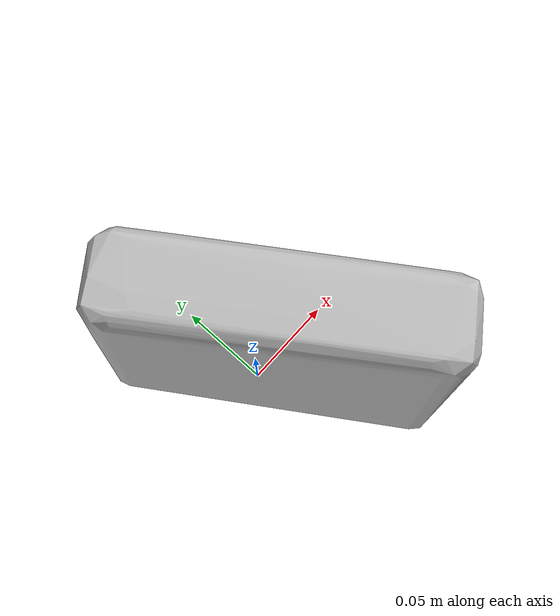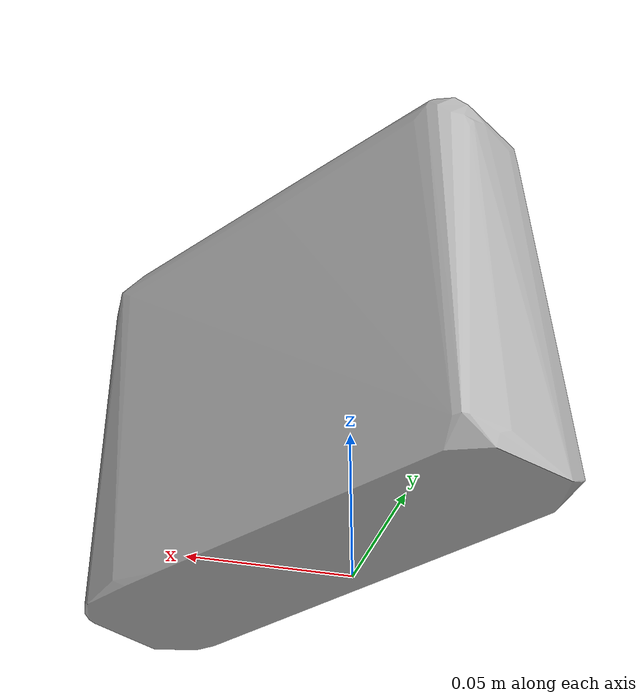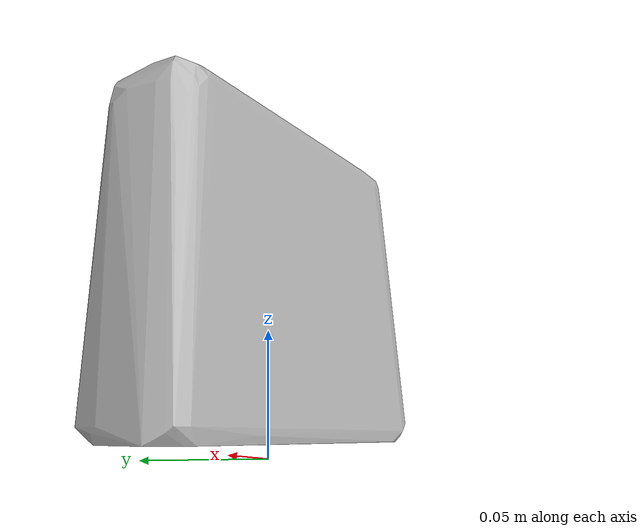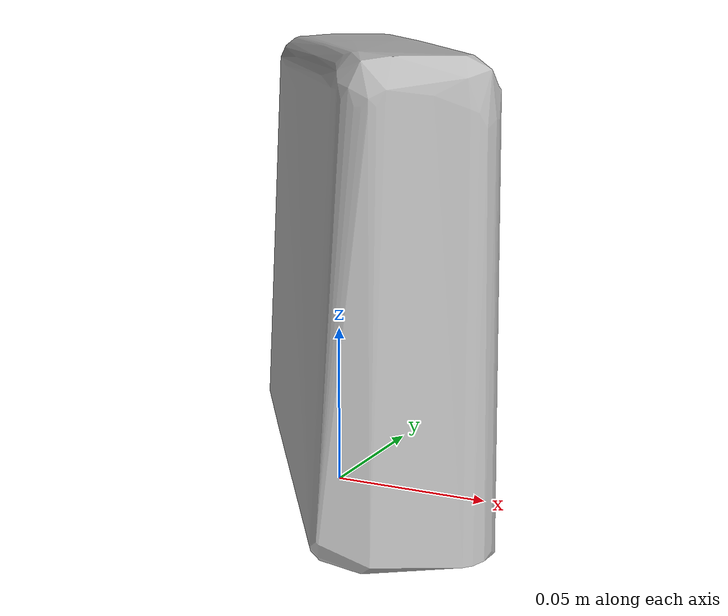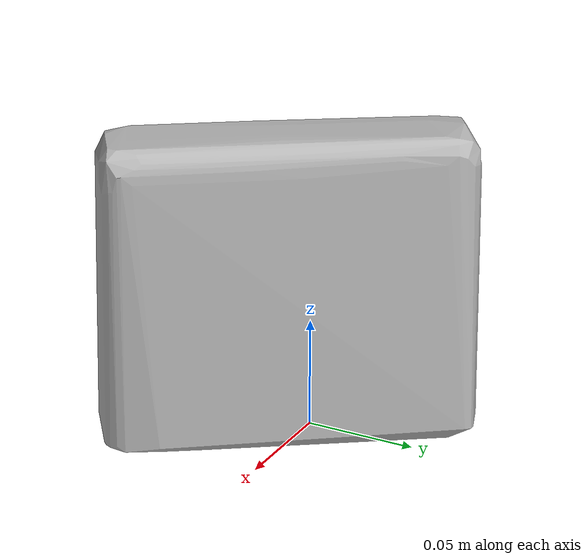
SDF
<?xml version='1.0'?>
<sdf version="1.4">
  <model name="nature_valley_gluten_free_roasted_nut_crunch_almond_crunch">
    <static>false</static>
    <link name="link">
      <inertial>
        <pose>0.013004093621819882 -0.003708693906911327 0.0700644005230505 1.579027282583953 -0.011997244490286075 -2.5517832085361762</pose>
        <mass>0.10336387006975993</mass>
        <inertia>
          <ixx>0.00037012768584743797</ixx>
          <ixy>9.476069809552141e-22</ixy>
          <ixz>6.807413284049765e-20</ixz>
          <iyy>0.00023789691428559239</iyy>
          <iyz>-7.058765001670034e-21</iyz>
          <izz>0.00017204036432423372</izz>
        </inertia>
      </inertial>
      <collision name="collision">
        <geometry>
          <mesh>
            <!-- Use a downsampled mesh for collisions -->
            <uri>model:///nature_valley_gluten_free_roasted_nut_crunch_almond_crunch/nature_valley_gluten_free_roasted_nut_crunch_almond_crunch_250_collision.obj</uri>
	        </mesh>
        </geometry>
        <surface>
      </surface>
      </collision>
      <visual name="visual">
        <geometry>
          <mesh>
            <uri>model:///nature_valley_gluten_free_roasted_nut_crunch_almond_crunch/optimized_tsdf_texture_mapped_mesh.obj</uri>
	        </mesh>
        </geometry>
        <material>
          <script>
            <uri>model:///nature_valley_gluten_free_roasted_nut_crunch_almond_crunch/nature_valley_gluten_free_roasted_nut_crunch_almond_crunch.material</uri>
            <name>nature_valley_gluten_free_roasted_nut_crunch_almond_crunch</name>
          </script>
        </material>
      </visual>
    </link>
  </model>
</sdf>
